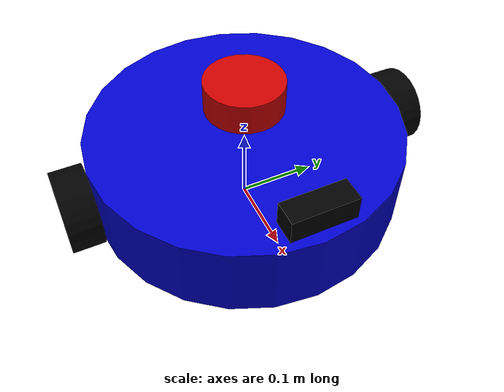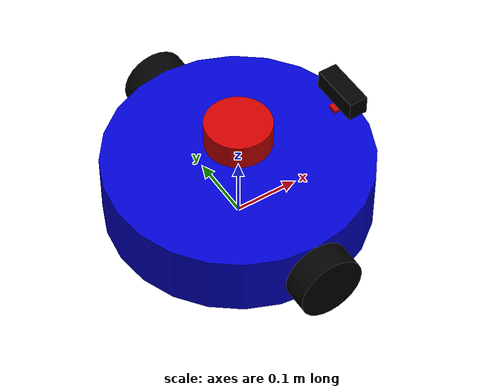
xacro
<?xml version="1.0"?>
<robot xmlns:xacro="http://www.ros.org/wiki/xacro" name="bio_robot">

  <!-- Constants -->
  <xacro:property name="PI" value="3.1415926535897931"/>
  <xacro:property name="base_mass" value="2.0"/>
  <xacro:property name="wheel_mass" value="0.3"/>
  <xacro:property name="base_radius" value="0.2"/>
  <xacro:property name="base_height" value="0.1"/>
  <xacro:property name="wheel_radius" value="0.05"/>
  <xacro:property name="wheel_width" value="0.04"/>

  <!-- Materials -->
  <material name="blue">
    <color rgba="0 0 0.8 1"/>
  </material>

  <material name="black">
    <color rgba="0 0 0 1"/>
  </material>

  <material name="white">
    <color rgba="1 1 1 1"/>
  </material>

  <material name="red">
    <color rgba="0.8 0 0 1"/>
  </material>

  <!-- Base Link -->
  <link name="base_link">
    <visual>
      <geometry>
        <cylinder radius="${base_radius}" length="${base_height}"/>
      </geometry>
      <material name="blue"/>
    </visual>
    <collision>
      <geometry>
        <cylinder radius="${base_radius}" length="${base_height}"/>
      </geometry>
    </collision>
    <inertial>
      <mass value="${base_mass}"/>
      <inertia ixx="0.01" ixy="0.0" ixz="0.0" iyy="0.01" iyz="0.0" izz="0.02"/>
    </inertial>
  </link>

  <!-- Base Footprint -->
  <link name="base_footprint"/>

  <joint name="base_footprint_joint" type="fixed">
    <parent link="base_footprint"/>
    <child link="base_link"/>
    <origin xyz="0 0 ${wheel_radius + 0.02}" rpy="0 0 0"/>
  </joint>

  <!-- Left Wheel -->
  <link name="left_wheel">
    <visual>
      <geometry>
        <cylinder radius="${wheel_radius}" length="${wheel_width}"/>
      </geometry>
      <origin xyz="0 0 0" rpy="${PI/2} 0 0"/>
      <material name="black"/>
    </visual>
    <collision>
      <geometry>
        <cylinder radius="${wheel_radius}" length="${wheel_width}"/>
      </geometry>
      <origin xyz="0 0 0" rpy="${PI/2} 0 0"/>
    </collision>
    <inertial>
      <mass value="${wheel_mass}"/>
      <inertia ixx="0.001" ixy="0.0" ixz="0.0" iyy="0.001" iyz="0.0" izz="0.001"/>
    </inertial>
  </link>

  <joint name="left_wheel_joint" type="continuous">
    <parent link="base_link"/>
    <child link="left_wheel"/>
    <origin xyz="0 ${base_radius + wheel_width/2} 0" rpy="0 0 0"/>
    <axis xyz="0 1 0"/>
  </joint>

  <!-- Right Wheel -->
  <link name="right_wheel">
    <visual>
      <geometry>
        <cylinder radius="${wheel_radius}" length="${wheel_width}"/>
      </geometry>
      <origin xyz="0 0 0" rpy="${PI/2} 0 0"/>
      <material name="black"/>
    </visual>
    <collision>
      <geometry>
        <cylinder radius="${wheel_radius}" length="${wheel_width}"/>
      </geometry>
      <origin xyz="0 0 0" rpy="${PI/2} 0 0"/>
    </collision>
    <inertial>
      <mass value="${wheel_mass}"/>
      <inertia ixx="0.001" ixy="0.0" ixz="0.0" iyy="0.001" iyz="0.0" izz="0.001"/>
    </inertial>
  </link>

  <joint name="right_wheel_joint" type="continuous">
    <parent link="base_link"/>
    <child link="right_wheel"/>
    <origin xyz="0 ${-base_radius - wheel_width/2} 0" rpy="0 0 0"/>
    <axis xyz="0 1 0"/>
  </joint>

  <!-- Caster Wheel (front) -->
  <link name="caster_wheel">
    <visual>
      <geometry>
        <sphere radius="0.03"/>
      </geometry>
      <material name="white"/>
    </visual>
    <collision>
      <geometry>
        <sphere radius="0.03"/>
      </geometry>
    </collision>
    <inertial>
      <mass value="0.1"/>
      <inertia ixx="0.0001" ixy="0.0" ixz="0.0" iyy="0.0001" iyz="0.0" izz="0.0001"/>
    </inertial>
  </link>

  <joint name="caster_wheel_joint" type="fixed">
    <parent link="base_link"/>
    <child link="caster_wheel"/>
    <origin xyz="${base_radius - 0.05} 0 ${-base_height/2 - 0.01}" rpy="0 0 0"/>
  </joint>

  <!-- LiDAR Sensor -->
  <link name="laser">
    <visual>
      <geometry>
        <cylinder radius="0.05" length="0.04"/>
      </geometry>
      <material name="red"/>
    </visual>
    <collision>
      <geometry>
        <cylinder radius="0.05" length="0.04"/>
      </geometry>
    </collision>
    <inertial>
      <mass value="0.125"/>
      <inertia ixx="0.0001" ixy="0.0" ixz="0.0" iyy="0.0001" iyz="0.0" izz="0.0001"/>
    </inertial>
  </link>

  <joint name="laser_joint" type="fixed">
    <parent link="base_link"/>
    <child link="laser"/>
    <origin xyz="0 0 ${base_height/2 + 0.05}" rpy="0 0 0"/>
  </joint>

  <!-- Camera -->
  <link name="camera_link">
    <visual>
      <geometry>
        <box size="0.03 0.08 0.03"/>
      </geometry>
      <material name="black"/>
    </visual>
    <collision>
      <geometry>
        <box size="0.03 0.08 0.03"/>
      </geometry>
    </collision>
    <inertial>
      <mass value="0.1"/>
      <inertia ixx="0.0001" ixy="0.0" ixz="0.0" iyy="0.0001" iyz="0.0" izz="0.0001"/>
    </inertial>
  </link>

  <joint name="camera_joint" type="fixed">
    <parent link="base_link"/>
    <child link="camera_link"/>
    <origin xyz="${base_radius - 0.02} 0 ${base_height/2 + 0.03}" rpy="0 0 0"/>
  </joint>

  <link name="camera_optical_frame"/>

  <joint name="camera_optical_joint" type="fixed">
    <parent link="camera_link"/>
    <child link="camera_optical_frame"/>
    <origin xyz="0 0 0" rpy="${-PI/2} 0 ${-PI/2}"/>
  </joint>

  <!-- IMU -->
  <link name="imu_link">
    <visual>
      <geometry>
        <box size="0.02 0.02 0.01"/>
      </geometry>
      <material name="blue"/>
    </visual>
    <inertial>
      <mass value="0.01"/>
      <inertia ixx="0.00001" ixy="0.0" ixz="0.0" iyy="0.00001" iyz="0.0" izz="0.00001"/>
    </inertial>
  </link>

  <joint name="imu_joint" type="fixed">
    <parent link="base_link"/>
    <child link="imu_link"/>
    <origin xyz="0 0 0" rpy="0 0 0"/>
  </joint>

  <!-- Gas Sensors (simulated as small boxes) -->
  <link name="gas_sensor_link">
    <visual>
      <geometry>
        <box size="0.015 0.015 0.01"/>
      </geometry>
      <material name="red"/>
    </visual>
    <inertial>
      <mass value="0.01"/>
      <inertia ixx="0.00001" ixy="0.0" ixz="0.0" iyy="0.00001" iyz="0.0" izz="0.00001"/>
    </inertial>
  </link>

  <joint name="gas_sensor_joint" type="fixed">
    <parent link="base_link"/>
    <child link="gas_sensor_link"/>
    <origin xyz="${base_radius - 0.03} 0 ${base_height/2}" rpy="0 0 0"/>
  </joint>

  <!-- Gazebo plugins -->
  <gazebo>
    <plugin name="differential_drive_controller" filename="libgazebo_ros_diff_drive.so">
      <alwaysOn>true</alwaysOn>
      <updateRate>50</updateRate>
      <leftJoint>left_wheel_joint</leftJoint>
      <rightJoint>right_wheel_joint</rightJoint>
      <wheelSeparation>${2 * (base_radius + wheel_width/2)}</wheelSeparation>
      <wheelDiameter>${2 * wheel_radius}</wheelDiameter>
      <torque>10</torque>
      <commandTopic>cmd_vel</commandTopic>
      <odometryTopic>odom</odometryTopic>
      <odometryFrame>odom</odometryFrame>
      <robotBaseFrame>base_footprint</robotBaseFrame>
      <publishWheelTF>true</publishWheelTF>
      <publishWheelJointState>true</publishWheelJointState>
      <legacyMode>false</legacyMode>
    </plugin>
  </gazebo>

  <!-- LiDAR plugin -->
  <gazebo reference="laser">
    <sensor type="ray" name="laser_sensor">
      <pose>0 0 0 0 0 0</pose>
      <visualize>true</visualize>
      <update_rate>40</update_rate>
      <ray>
        <scan>
          <horizontal>
            <samples>360</samples>
            <resolution>1</resolution>
            <min_angle>-${PI}</min_angle>
            <max_angle>${PI}</max_angle>
          </horizontal>
        </scan>
        <range>
          <min>0.12</min>
          <max>10.0</max>
          <resolution>0.01</resolution>
        </range>
        <noise>
          <type>gaussian</type>
          <mean>0.0</mean>
          <stddev>0.01</stddev>
        </noise>
      </ray>
      <plugin name="gazebo_ros_laser" filename="libgazebo_ros_laser.so">
        <topicName>scan</topicName>
        <frameName>laser</frameName>
      </plugin>
    </sensor>
  </gazebo>

  <!-- Camera plugin -->
  <gazebo reference="camera_link">
    <sensor type="camera" name="camera1">
      <update_rate>30.0</update_rate>
      <camera name="head">
        <horizontal_fov>1.3962634</horizontal_fov>
        <image>
          <width>640</width>
          <height>480</height>
          <format>R8G8B8</format>
        </image>
        <clip>
          <near>0.02</near>
          <far>300</far>
        </clip>
        <noise>
          <type>gaussian</type>
          <mean>0.0</mean>
          <stddev>0.007</stddev>
        </noise>
      </camera>
      <plugin name="camera_controller" filename="libgazebo_ros_camera.so">
        <alwaysOn>true</alwaysOn>
        <updateRate>0.0</updateRate>
        <cameraName>camera/rgb</cameraName>
        <imageTopicName>image_raw</imageTopicName>
        <cameraInfoTopicName>camera_info</cameraInfoTopicName>
        <frameName>camera_optical_frame</frameName>
        <hackBaseline>0.07</hackBaseline>
        <distortionK1>0.0</distortionK1>
        <distortionK2>0.0</distortionK2>
        <distortionK3>0.0</distortionK3>
        <distortionT1>0.0</distortionT1>
        <distortionT2>0.0</distortionT2>
      </plugin>
    </sensor>
  </gazebo>

  <!-- IMU plugin -->
  <gazebo reference="imu_link">
    <gravity>true</gravity>
    <sensor name="imu_sensor" type="imu">
      <always_on>true</always_on>
      <update_rate>100</update_rate>
      <visualize>true</visualize>
      <topic>__default_topic__</topic>
      <plugin filename="libgazebo_ros_imu_sensor.so" name="imu_plugin">
        <topicName>imu</topicName>
        <bodyName>imu_link</bodyName>
        <updateRateHZ>100.0</updateRateHZ>
        <gaussianNoise>0.0</gaussianNoise>
        <xyzOffset>0 0 0</xyzOffset>
        <rpyOffset>0 0 0</rpyOffset>
        <frameName>imu_link</frameName>
      </plugin>
    </sensor>
  </gazebo>

  <!-- Gas sensor custom plugin (simulated) -->
  <gazebo reference="gas_sensor_link">
    <sensor type="ray" name="gas_sensor">
      <visualize>false</visualize>
      <update_rate>10</update_rate>
      <ray>
        <scan>
          <horizontal>
            <samples>1</samples>
            <resolution>1</resolution>
            <min_angle>0</min_angle>
            <max_angle>0</max_angle>
          </horizontal>
        </scan>
        <range>
          <min>0.01</min>
          <max>20.0</max>
          <resolution>0.01</resolution>
        </range>
      </ray>
    </sensor>
  </gazebo>

  <!-- Material colors for Gazebo -->
  <gazebo reference="base_link">
    <material>Gazebo/Blue</material>
  </gazebo>

  <gazebo reference="left_wheel">
    <material>Gazebo/Black</material>
    <mu1>1.0</mu1>
    <mu2>1.0</mu2>
  </gazebo>

  <gazebo reference="right_wheel">
    <material>Gazebo/Black</material>
    <mu1>1.0</mu1>
    <mu2>1.0</mu2>
  </gazebo>

  <gazebo reference="caster_wheel">
    <material>Gazebo/White</material>
    <mu1>0.1</mu1>
    <mu2>0.1</mu2>
  </gazebo>

  <gazebo reference="laser">
    <material>Gazebo/Red</material>
  </gazebo>

</robot>
